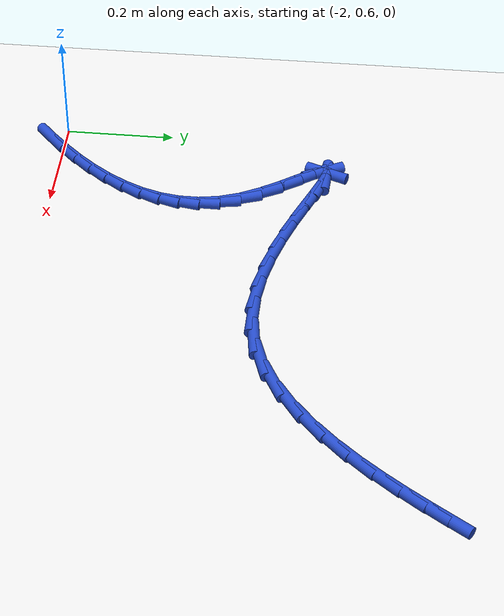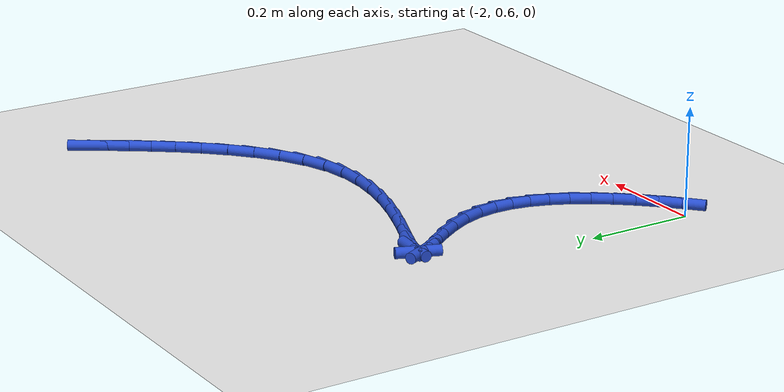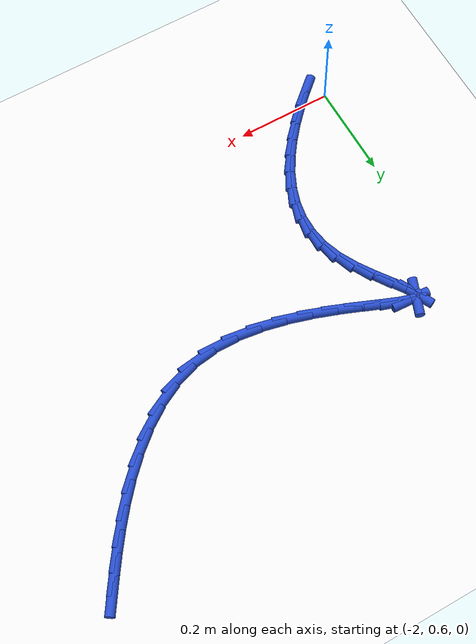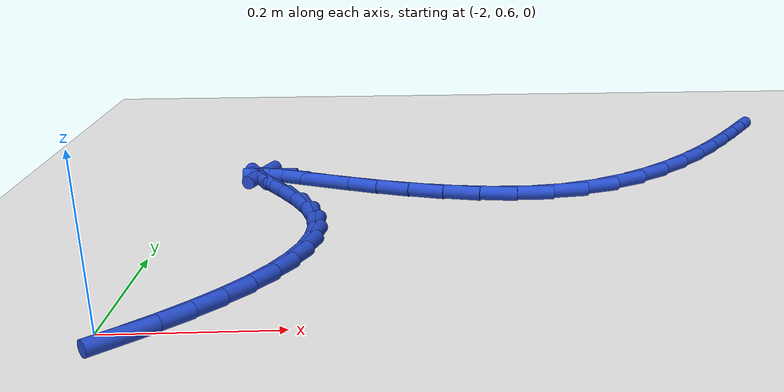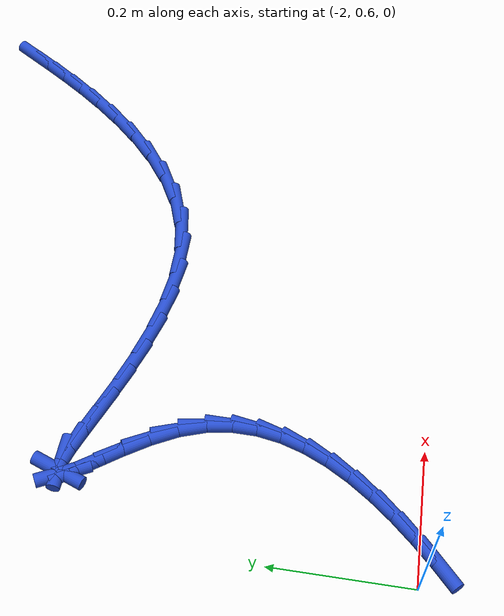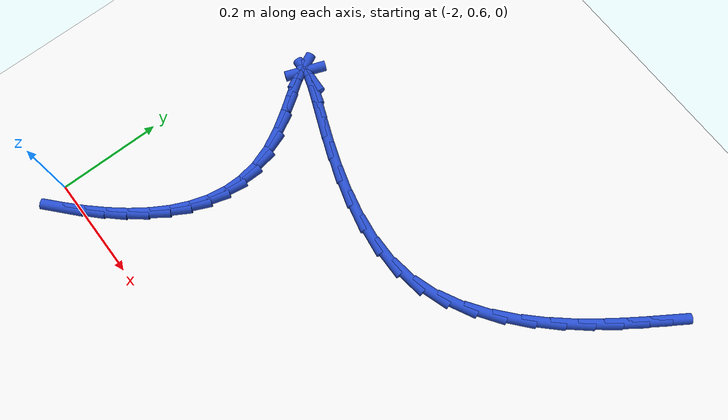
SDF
<sdf version="1.6">
 <world name="default">
  <model name="ground_plane">
   <static>1</static>
   <link name="link">
    <collision name="collision">
     <geometry><plane><normal>0 0 1</normal><size>100 100</size></plane></geometry>
     <surface><friction><ode><mu>100</mu><mu2>50</mu2></ode></friction></surface>
    </collision>
    <visual name="visual">
     <cast_shadows>0</cast_shadows>
     <geometry><plane><normal>0 0 1</normal><size>100 100</size></plane></geometry>
     <material>
      <script><uri>file://media/materials/scripts/gazebo.material</uri><name>Gazebo/WhiteGlow</name></script>
     </material>
    </visual>
   </link>
  </model>
  <model name="line">
   <link name="link_61">
    <pose>-1.1269742876556303 1.3187515924450675 0.01 0 1.57 0.9894371976624968</pose>
    <collision name="collision">
     <geometry><cylinder><radius>0.01</radius><length>0.08</length></cylinder></geometry>
    </collision>
    <visual name="visual">
     <material>
      <script><name>Gazebo/Blue</name><uri>file://media/materials/scripts/gazebo.material</uri></script>
     </material>
     <geometry><cylinder><radius>0.01</radius><length>0.08</length></cylinder></geometry>
    </visual>
   </link>
   <link name="link_62">
    <pose>-1.1466606751196768 1.288792671938291 0.01 0 1.57 0.9746583570370749</pose>
    <collision name="collision">
     <geometry><cylinder><radius>0.01</radius><length>0.08</length></cylinder></geometry>
    </collision>
    <visual name="visual">
     <material>
      <script><name>Gazebo/Blue</name><uri>file://media/materials/scripts/gazebo.material</uri></script>
     </material>
     <geometry><cylinder><radius>0.01</radius><length>0.08</length></cylinder></geometry>
    </visual>
   </link>
   <link name="link_63">
    <pose>-1.1700290069080548 1.2543505960104315 0.01 0 1.57 0.9470606173593883</pose>
    <collision name="collision">
     <geometry><cylinder><radius>0.01</radius><length>0.08</length></cylinder></geometry>
    </collision>
    <visual name="visual">
     <material>
      <script><name>Gazebo/Blue</name><uri>file://media/materials/scripts/gazebo.material</uri></script>
     </material>
     <geometry><cylinder><radius>0.01</radius><length>0.08</length></cylinder></geometry>
    </visual>
   </link>
   <link name="link_64">
    <pose>-1.1969411566410522 1.2169499510791275 0.01 0 1.57 0.9079406036954891</pose>
    <collision name="collision">
     <geometry><cylinder><radius>0.01</radius><length>0.08</length></cylinder></geometry>
    </collision>
    <visual name="visual">
     <material>
      <script><name>Gazebo/Blue</name><uri>file://media/materials/scripts/gazebo.material</uri></script>
     </material>
     <geometry><cylinder><radius>0.01</radius><length>0.08</length></cylinder></geometry>
    </visual>
   </link>
   <link name="link_65">
    <pose>-1.2272589979389572 1.1781153235620145 0.01 0 1.57 0.8565987383460771</pose>
    <collision name="collision">
     <geometry><cylinder><radius>0.01</radius><length>0.08</length></cylinder></geometry>
    </collision>
    <visual name="visual">
     <material>
      <script><name>Gazebo/Blue</name><uri>file://media/materials/scripts/gazebo.material</uri></script>
     </material>
     <geometry><cylinder><radius>0.01</radius><length>0.08</length></cylinder></geometry>
    </visual>
   </link>
   <link name="link_66">
    <pose>-1.2608444044220597 1.1393712998767298 0.01 0 1.57 0.7910043820636863</pose>
    <collision name="collision">
     <geometry><cylinder><radius>0.01</radius><length>0.08</length></cylinder></geometry>
    </collision>
    <visual name="visual">
     <material>
      <script><name>Gazebo/Blue</name><uri>file://media/materials/scripts/gazebo.material</uri></script>
     </material>
     <geometry><cylinder><radius>0.01</radius><length>0.08</length></cylinder></geometry>
    </visual>
   </link>
   <link name="link_67">
    <pose>-1.2975592497106474 1.1022424664409118 0.01 0 1.57 0.7079755903735994</pose>
    <collision name="collision">
     <geometry><cylinder><radius>0.01</radius><length>0.08</length></cylinder></geometry>
    </collision>
    <visual name="visual">
     <material>
      <script><name>Gazebo/Blue</name><uri>file://media/materials/scripts/gazebo.material</uri></script>
     </material>
     <geometry><cylinder><radius>0.01</radius><length>0.08</length></cylinder></geometry>
    </visual>
   </link>
   <link name="link_68">
    <pose>-1.3372654074250094 1.0682534096721956 0.01 0 1.57 0.6033260060816759</pose>
    <collision name="collision">
     <geometry><cylinder><radius>0.01</radius><length>0.08</length></cylinder></geometry>
    </collision>
    <visual name="visual">
     <material>
      <script><name>Gazebo/Blue</name><uri>file://media/materials/scripts/gazebo.material</uri></script>
     </material>
     <geometry><cylinder><radius>0.01</radius><length>0.08</length></cylinder></geometry>
    </visual>
   </link>
   <link name="link_69">
    <pose>-1.3798247511854336 1.0389287159882197 0.01 0 1.57 0.4724180123842401</pose>
    <collision name="collision">
     <geometry><cylinder><radius>0.01</radius><length>0.08</length></cylinder></geometry>
    </collision>
    <visual name="visual">
     <material>
      <script><name>Gazebo/Blue</name><uri>file://media/materials/scripts/gazebo.material</uri></script>
     </material>
     <geometry><cylinder><radius>0.01</radius><length>0.08</length></cylinder></geometry>
    </visual>
   </link>
   <link name="link_70">
    <pose>-1.4250991546122092 1.01579297180662 0.01 0 1.57 0.31178265190740534</pose>
    <collision name="collision">
     <geometry><cylinder><radius>0.01</radius><length>0.08</length></cylinder></geometry>
    </collision>
    <visual name="visual">
     <material>
      <script><name>Gazebo/Blue</name><uri>file://media/materials/scripts/gazebo.material</uri></script>
     </material>
     <geometry><cylinder><radius>0.01</radius><length>0.08</length></cylinder></geometry>
    </visual>
   </link>
   <link name="link_71">
    <pose>-1.4729504913256237 1.0003707635450345 0.01 0 1.57 0.1321042824551783</pose>
    <collision name="collision">
     <geometry><cylinder><radius>0.01</radius><length>0.08</length></cylinder></geometry>
    </collision>
    <visual name="visual">
     <material>
      <script><name>Gazebo/Blue</name><uri>file://media/materials/scripts/gazebo.material</uri></script>
     </material>
     <geometry><cylinder><radius>0.01</radius><length>0.08</length></cylinder></geometry>
    </visual>
   </link>
   <link name="link_72">
    <pose>-1.5230870449821932 0.9937087105716411 0.01 0 1.57 -0.02119591381346585</pose>
    <collision name="collision">
     <geometry><cylinder><radius>0.01</radius><length>0.08</length></cylinder></geometry>
    </collision>
    <visual name="visual">
     <material>
      <script><name>Gazebo/Blue</name><uri>file://media/materials/scripts/gazebo.material</uri></script>
     </material>
     <geometry><cylinder><radius>0.01</radius><length>0.08</length></cylinder></geometry>
    </visual>
   </link>
   <link name="link_73">
    <pose>-1.574557194821243 0.9947998308378465 0.01 0 1.57 -0.14007135699304443</pose>
    <collision name="collision">
     <geometry><cylinder><radius>0.01</radius><length>0.08</length></cylinder></geometry>
    </collision>
    <visual name="visual">
     <material>
      <script><name>Gazebo/Blue</name><uri>file://media/materials/scripts/gazebo.material</uri></script>
     </material>
     <geometry><cylinder><radius>0.01</radius><length>0.08</length></cylinder></geometry>
    </visual>
   </link>
   <link name="link_74">
    <pose>-1.6262321262393904 1.0020857207301237 0.01 0 1.57 -0.23073331540294398</pose>
    <collision name="collision">
     <geometry><cylinder><radius>0.01</radius><length>0.08</length></cylinder></geometry>
    </collision>
    <visual name="visual">
     <material>
      <script><name>Gazebo/Blue</name><uri>file://media/materials/scripts/gazebo.material</uri></script>
     </material>
     <geometry><cylinder><radius>0.01</radius><length>0.08</length></cylinder></geometry>
    </visual>
   </link>
   <link name="link_75">
    <pose>-1.6769830223988063 1.014007969681426 0.01 0 1.57 -0.2988024923763899</pose>
    <collision name="collision">
     <geometry><cylinder><radius>0.01</radius><length>0.08</length></cylinder></geometry>
    </collision>
    <visual name="visual">
     <material>
      <script><name>Gazebo/Blue</name><uri>file://media/materials/scripts/gazebo.material</uri></script>
     </material>
     <geometry><cylinder><radius>0.01</radius><length>0.08</length></cylinder></geometry>
    </visual>
   </link>
   <link name="link_76">
    <pose>-1.7256810664616629 1.0290081671247053 0.01 0 1.57 -0.3481562601427993</pose>
    <collision name="collision">
     <geometry><cylinder><radius>0.01</radius><length>0.08</length></cylinder></geometry>
    </collision>
    <visual name="visual">
     <material>
      <script><name>Gazebo/Blue</name><uri>file://media/materials/scripts/gazebo.material</uri></script>
     </material>
     <geometry><cylinder><radius>0.01</radius><length>0.08</length></cylinder></geometry>
    </visual>
   </link>
   <link name="link_77">
    <pose>-1.7711974415901337 1.0455279024929165 0.01 0 1.57 -0.38047514130576765</pose>
    <collision name="collision">
     <geometry><cylinder><radius>0.01</radius><length>0.08</length></cylinder></geometry>
    </collision>
    <visual name="visual">
     <material>
      <script><name>Gazebo/Blue</name><uri>file://media/materials/scripts/gazebo.material</uri></script>
     </material>
     <geometry><cylinder><radius>0.01</radius><length>0.08</length></cylinder></geometry>
    </visual>
   </link>
   <link name="link_78">
    <pose>-1.812403330946388 1.0620087652190109 0.01 0 1.57 -0.3943344640666873</pose>
    <collision name="collision">
     <geometry><cylinder><radius>0.01</radius><length>0.08</length></cylinder></geometry>
    </collision>
    <visual name="visual">
     <material>
      <script><name>Gazebo/Blue</name><uri>file://media/materials/scripts/gazebo.material</uri></script>
     </material>
     <geometry><cylinder><radius>0.01</radius><length>0.08</length></cylinder></geometry>
    </visual>
   </link>
   <link name="link_79">
    <pose>-1.8481699176926 1.0768923447359424 0.01 0 1.57 -0.38193745795643896</pose>
    <collision name="collision">
     <geometry><cylinder><radius>0.01</radius><length>0.08</length></cylinder></geometry>
    </collision>
    <visual name="visual">
     <material>
      <script><name>Gazebo/Blue</name><uri>file://media/materials/scripts/gazebo.material</uri></script>
     </material>
     <geometry><cylinder><radius>0.01</radius><length>0.08</length></cylinder></geometry>
    </visual>
   </link>
   <link name="link_80">
    <pose>-1.8773683849909397 1.0886202304766637 0.01 0 1.57 -0.31531611747071137</pose>
    <collision name="collision">
     <geometry><cylinder><radius>0.01</radius><length>0.08</length></cylinder></geometry>
    </collision>
    <visual name="visual">
     <material>
      <script><name>Gazebo/Blue</name><uri>file://media/materials/scripts/gazebo.material</uri></script>
     </material>
     <geometry><cylinder><radius>0.01</radius><length>0.08</length></cylinder></geometry>
    </visual>
   </link>
   <link name="link_81">
    <pose>-1.8988699160035798 1.0956340118741275 0.01 0 1.57 -0.058412448626147175</pose>
    <collision name="collision">
     <geometry><cylinder><radius>0.01</radius><length>0.08</length></cylinder></geometry>
    </collision>
    <visual name="visual">
     <material>
      <script><name>Gazebo/Blue</name><uri>file://media/materials/scripts/gazebo.material</uri></script>
     </material>
     <geometry><cylinder><radius>0.01</radius><length>0.08</length></cylinder></geometry>
    </visual>
   </link>
   <link name="link_82">
    <pose>-1.9115456938926927 1.0963752783612875 0.01 0 1.57 1.2043088007781666</pose>
    <collision name="collision">
     <geometry><cylinder><radius>0.01</radius><length>0.08</length></cylinder></geometry>
    </collision>
    <visual name="visual">
     <material>
      <script><name>Gazebo/Blue</name><uri>file://media/materials/scripts/gazebo.material</uri></script>
     </material>
     <geometry><cylinder><radius>0.01</radius><length>0.08</length></cylinder></geometry>
    </visual>
   </link>
   <link name="link_83">
    <pose>-1.9142669018204492 1.089285619371096 0.01 0 1.57 -1.1065421476796948</pose>
    <collision name="collision">
     <geometry><cylinder><radius>0.01</radius><length>0.08</length></cylinder></geometry>
    </collision>
    <visual name="visual">
     <material>
      <script><name>Gazebo/Blue</name><uri>file://media/materials/scripts/gazebo.material</uri></script>
     </material>
     <geometry><cylinder><radius>0.01</radius><length>0.08</length></cylinder></geometry>
    </visual>
   </link>
   <link name="link_84">
    <pose>-1.906078390673524 1.072933401519736 0.01 0 1.57 -0.9668425229618751</pose>
    <collision name="collision">
     <geometry><cylinder><radius>0.01</radius><length>0.08</length></cylinder></geometry>
    </collision>
    <visual name="visual">
     <material>
      <script><name>Gazebo/Blue</name><uri>file://media/materials/scripts/gazebo.material</uri></script>
     </material>
     <geometry><cylinder><radius>0.01</radius><length>0.08</length></cylinder></geometry>
    </visual>
   </link>
   <link name="link_85">
    <pose>-1.8888306330054072 1.0479350911099992 0.01 0 1.57 -0.9552400441284086</pose>
    <collision name="collision">
     <geometry><cylinder><radius>0.01</radius><length>0.08</length></cylinder></geometry>
    </collision>
    <visual name="visual">
     <material>
      <script><name>Gazebo/Blue</name><uri>file://media/materials/scripts/gazebo.material</uri></script>
     </material>
     <geometry><cylinder><radius>0.01</radius><length>0.08</length></cylinder></geometry>
    </visual>
   </link>
   <link name="link_86">
    <pose>-1.8666449168141181 1.0165648463763077 0.01 0 1.57 -0.9961316665237281</pose>
    <collision name="collision">
     <geometry><cylinder><radius>0.01</radius><length>0.08</length></cylinder></geometry>
    </collision>
    <visual name="visual">
     <material>
      <script><name>Gazebo/Blue</name><uri>file://media/materials/scripts/gazebo.material</uri></script>
     </material>
     <geometry><cylinder><radius>0.01</radius><length>0.08</length></cylinder></geometry>
    </visual>
   </link>
   <link name="link_87">
    <pose>-1.8437077346694337 0.9811444247944792 0.01 0 1.57 -1.0873686801661873</pose>
    <collision name="collision">
     <geometry><cylinder><radius>0.01</radius><length>0.08</length></cylinder></geometry>
    </collision>
    <visual name="visual">
     <material>
      <script><name>Gazebo/Blue</name><uri>file://media/materials/scripts/gazebo.material</uri></script>
     </material>
     <geometry><cylinder><radius>0.01</radius><length>0.08</length></cylinder></geometry>
    </visual>
   </link>
   <link name="link_88">
    <pose>-1.8242054874375733 0.9439955401939941 0.01 0 1.57 -1.2377893909578026</pose>
    <collision name="collision">
     <geometry><cylinder><radius>0.01</radius><length>0.08</length></cylinder></geometry>
    </collision>
    <visual name="visual">
     <material>
      <script><name>Gazebo/Blue</name><uri>file://media/materials/scripts/gazebo.material</uri></script>
     </material>
     <geometry><cylinder><radius>0.01</radius><length>0.08</length></cylinder></geometry>
    </visual>
   </link>
   <link name="link_89">
    <pose>-1.8114109188624938 0.9070050510238277 0.01 0 1.57 -1.4083688272910402</pose>
    <collision name="collision">
     <geometry><cylinder><radius>0.01</radius><length>0.08</length></cylinder></geometry>
    </collision>
    <visual name="visual">
     <material>
      <script><name>Gazebo/Blue</name><uri>file://media/materials/scripts/gazebo.material</uri></script>
     </material>
     <geometry><cylinder><radius>0.01</radius><length>0.08</length></cylinder></geometry>
    </visual>
   </link>
   <link name="link_90">
    <pose>-1.8054380385934439 0.8705564152961696 0.01 0 1.57 1.5629668787594109</pose>
    <collision name="collision">
     <geometry><cylinder><radius>0.01</radius><length>0.08</length></cylinder></geometry>
    </collision>
    <visual name="visual">
     <material>
      <script><name>Gazebo/Blue</name><uri>file://media/materials/scripts/gazebo.material</uri></script>
     </material>
     <geometry><cylinder><radius>0.01</radius><length>0.08</length></cylinder></geometry>
    </visual>
   </link>
   <link name="link_91">
    <pose>-1.8057187143031268 0.8347084253455285 0.01 0 1.57 1.402846866374255</pose>
    <collision name="collision">
     <geometry><cylinder><radius>0.01</radius><length>0.08</length></cylinder></geometry>
    </collision>
    <visual name="visual">
     <material>
      <script><name>Gazebo/Blue</name><uri>file://media/materials/scripts/gazebo.material</uri></script>
     </material>
     <geometry><cylinder><radius>0.01</radius><length>0.08</length></cylinder></geometry>
    </visual>
   </link>
   <link name="link_92">
    <pose>-1.8116848136642465 0.799519873506409 0.01 0 1.57 1.259702220497641</pose>
    <collision name="collision">
     <geometry><cylinder><radius>0.01</radius><length>0.08</length></cylinder></geometry>
    </collision>
    <visual name="visual">
     <material>
      <script><name>Gazebo/Blue</name><uri>file://media/materials/scripts/gazebo.material</uri></script>
     </material>
     <geometry><cylinder><radius>0.01</radius><length>0.08</length></cylinder></geometry>
    </visual>
   </link>
   <link name="link_93">
    <pose>-1.8227682043495066 0.7650495521133192 0.01 0 1.57 1.1363890468639288</pose>
    <collision name="collision">
     <geometry><cylinder><radius>0.01</radius><length>0.08</length></cylinder></geometry>
    </collision>
    <visual name="visual">
     <material>
      <script><name>Gazebo/Blue</name><uri>file://media/materials/scripts/gazebo.material</uri></script>
     </material>
     <geometry><cylinder><radius>0.01</radius><length>0.08</length></cylinder></geometry>
    </visual>
   </link>
   <link name="link_94">
    <pose>-1.8384007540316114 0.7313562535007649 0.01 0 1.57 1.0326381632584893</pose>
    <collision name="collision">
     <geometry><cylinder><radius>0.01</radius><length>0.08</length></cylinder></geometry>
    </collision>
    <visual name="visual">
     <material>
      <script><name>Gazebo/Blue</name><uri>file://media/materials/scripts/gazebo.material</uri></script>
     </material>
     <geometry><cylinder><radius>0.01</radius><length>0.08</length></cylinder></geometry>
    </visual>
   </link>
   <link name="link_95">
    <pose>-1.8580143303832646 0.6984987700032539 0.01 0 1.57 0.94650134524624</pose>
    <collision name="collision">
     <geometry><cylinder><radius>0.01</radius><length>0.08</length></cylinder></geometry>
    </collision>
    <visual name="visual">
     <material>
      <script><name>Gazebo/Blue</name><uri>file://media/materials/scripts/gazebo.material</uri></script>
     </material>
     <geometry><cylinder><radius>0.01</radius><length>0.08</length></cylinder></geometry>
    </visual>
   </link>
   <link name="link_96">
    <pose>-1.8810408010771702 0.6665358939552918 0.01 0 1.57 0.8754873230059949</pose>
    <collision name="collision">
     <geometry><cylinder><radius>0.01</radius><length>0.08</length></cylinder></geometry>
    </collision>
    <visual name="visual">
     <material>
      <script><name>Gazebo/Blue</name><uri>file://media/materials/scripts/gazebo.material</uri></script>
     </material>
     <geometry><cylinder><radius>0.01</radius><length>0.08</length></cylinder></geometry>
    </visual>
   </link>
   <link name="link_97">
    <pose>-1.906912033786032 0.6355264176913861 0.01 0 1.57 0.8171944277486413</pose>
    <collision name="collision">
     <geometry><cylinder><radius>0.01</radius><length>0.08</length></cylinder></geometry>
    </collision>
    <visual name="visual">
     <material>
      <script><name>Gazebo/Blue</name><uri>file://media/materials/scripts/gazebo.material</uri></script>
     </material>
     <geometry><cylinder><radius>0.01</radius><length>0.08</length></cylinder></geometry>
    </visual>
   </link>
   <link name="link_98">
    <pose>-1.9350598961825538 0.6055291335460432 0.01 0 1.57 0.769577469407598</pose>
    <collision name="collision">
     <geometry><cylinder><radius>0.01</radius><length>0.08</length></cylinder></geometry>
    </collision>
    <visual name="visual">
     <material>
      <script><name>Gazebo/Blue</name><uri>file://media/materials/scripts/gazebo.material</uri></script>
     </material>
     <geometry><cylinder><radius>0.01</radius><length>0.08</length></cylinder></geometry>
    </visual>
   </link>
   <link name="link_99">
    <pose>-1.96491625593944 0.576602833853769 0.01 0 1.57 0.7310203714607971</pose>
    <collision name="collision">
     <geometry><cylinder><radius>0.01</radius><length>0.08</length></cylinder></geometry>
    </collision>
    <visual name="visual">
     <material>
      <script><name>Gazebo/Blue</name><uri>file://media/materials/scripts/gazebo.material</uri></script>
     </material>
     <geometry><cylinder><radius>0.01</radius><length>0.08</length></cylinder></geometry>
    </visual>
   </link>
  </model>
 </world>
</sdf>
